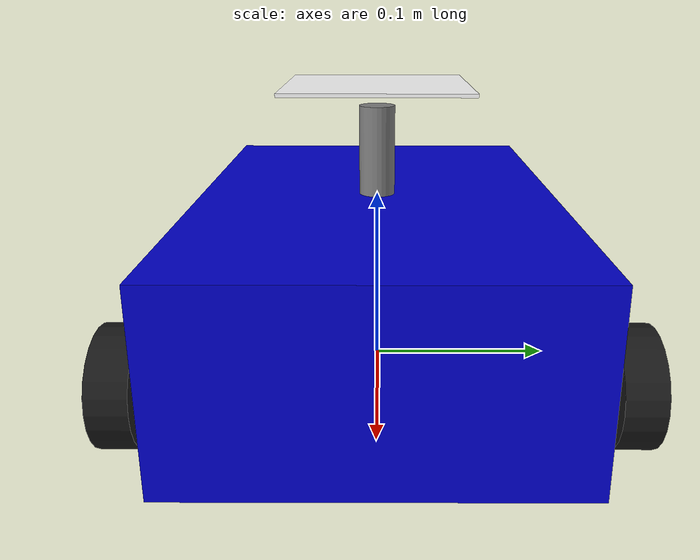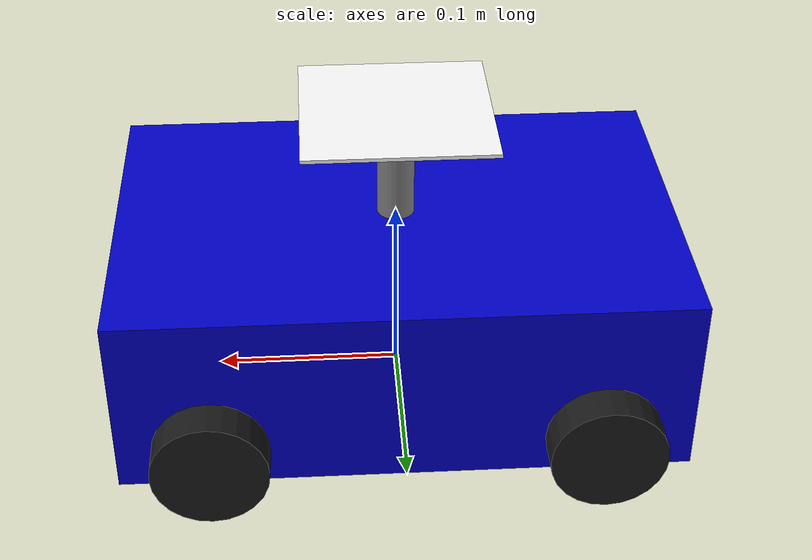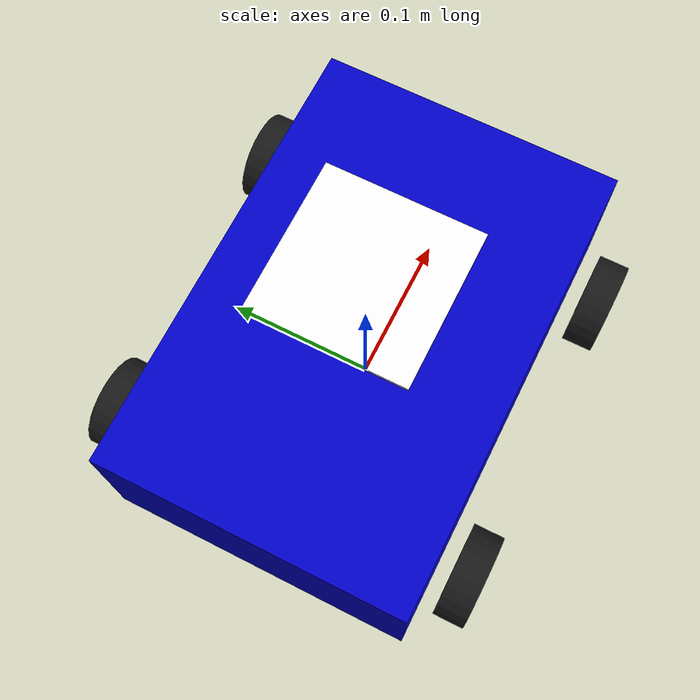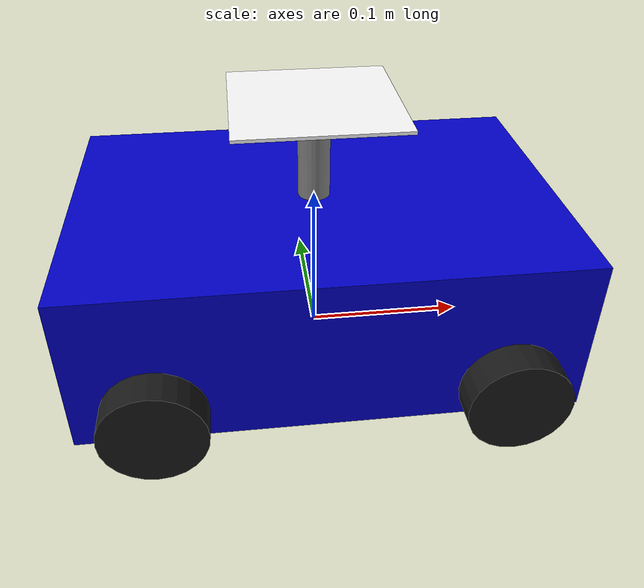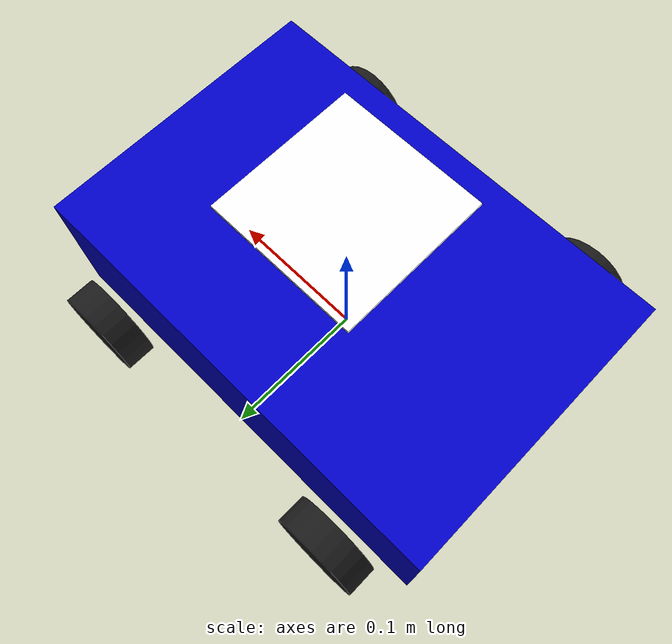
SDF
<?xml version="1.0"?>
<sdf version="1.8">
  <model name="marker_robot">
    <pose>0 0 0 0 0 0</pose>

    <!-- Base Link (robot body) -->
    <link name="base_link">
      <pose>0 0 0.05 0 0 0</pose>
      <inertial>
        <mass>2.0</mass>
        <inertia>
          <ixx>0.01</ixx>
          <ixy>0</ixy>
          <ixz>0</ixz>
          <iyy>0.02</iyy>
          <iyz>0</iyz>
          <izz>0.02</izz>
        </inertia>
      </inertial>
      <collision name="collision">
        <geometry>
          <box><size>0.30 0.20 0.10</size></box>
        </geometry>
      </collision>
      <visual name="visual">
        <geometry>
          <box><size>0.30 0.20 0.10</size></box>
        </geometry>
        <material>
          <ambient>0.0 0.0 0.8 1</ambient>
          <diffuse>0.0 0.0 0.8 1</diffuse>
        </material>
      </visual>
    </link>

    <!-- Left Front Wheel -->
    <link name="left_front_wheel">
      <pose>0.10 0.12 0.03 -1.5708 0 0</pose>
      <inertial>
        <mass>0.1</mass>
        <inertia>
          <ixx>0.00005</ixx>
          <ixy>0</ixy>
          <ixz>0</ixz>
          <iyy>0.00005</iyy>
          <iyz>0</iyz>
          <izz>0.00009</izz>
        </inertia>
      </inertial>
      <collision name="collision">
        <geometry>
          <cylinder>
            <radius>0.03</radius>
            <length>0.02</length>
          </cylinder>
        </geometry>
        <surface>
          <friction>
            <ode>
              <mu>1.0</mu>
              <mu2>1.0</mu2>
            </ode>
          </friction>
        </surface>
      </collision>
      <visual name="visual">
        <geometry>
          <cylinder>
            <radius>0.03</radius>
            <length>0.02</length>
          </cylinder>
        </geometry>
        <material>
          <ambient>0.1 0.1 0.1 1</ambient>
          <diffuse>0.1 0.1 0.1 1</diffuse>
        </material>
      </visual>
    </link>

    <!-- Right Front Wheel -->
    <link name="right_front_wheel">
      <pose>0.10 -0.12 0.03 -1.5708 0 0</pose>
      <inertial>
        <mass>0.1</mass>
        <inertia>
          <ixx>0.00005</ixx>
          <ixy>0</ixy>
          <ixz>0</ixz>
          <iyy>0.00005</iyy>
          <iyz>0</iyz>
          <izz>0.00009</izz>
        </inertia>
      </inertial>
      <collision name="collision">
        <geometry>
          <cylinder>
            <radius>0.03</radius>
            <length>0.02</length>
          </cylinder>
        </geometry>
        <surface>
          <friction>
            <ode>
              <mu>1.0</mu>
              <mu2>1.0</mu2>
            </ode>
          </friction>
        </surface>
      </collision>
      <visual name="visual">
        <geometry>
          <cylinder>
            <radius>0.03</radius>
            <length>0.02</length>
          </cylinder>
        </geometry>
        <material>
          <ambient>0.1 0.1 0.1 1</ambient>
          <diffuse>0.1 0.1 0.1 1</diffuse>
        </material>
      </visual>
    </link>

    <!-- Left Rear Wheel -->
    <link name="left_rear_wheel">
      <pose>-0.10 0.12 0.03 -1.5708 0 0</pose>
      <inertial>
        <mass>0.1</mass>
        <inertia>
          <ixx>0.00005</ixx>
          <ixy>0</ixy>
          <ixz>0</ixz>
          <iyy>0.00005</iyy>
          <iyz>0</iyz>
          <izz>0.00009</izz>
        </inertia>
      </inertial>
      <collision name="collision">
        <geometry>
          <cylinder>
            <radius>0.03</radius>
            <length>0.02</length>
          </cylinder>
        </geometry>
        <surface>
          <friction>
            <ode>
              <mu>1.0</mu>
              <mu2>1.0</mu2>
            </ode>
          </friction>
        </surface>
      </collision>
      <visual name="visual">
        <geometry>
          <cylinder>
            <radius>0.03</radius>
            <length>0.02</length>
          </cylinder>
        </geometry>
        <material>
          <ambient>0.1 0.1 0.1 1</ambient>
          <diffuse>0.1 0.1 0.1 1</diffuse>
        </material>
      </visual>
    </link>

    <!-- Right Rear Wheel -->
    <link name="right_rear_wheel">
      <pose>-0.10 -0.12 0.03 -1.5708 0 0</pose>
      <inertial>
        <mass>0.1</mass>
        <inertia>
          <ixx>0.00005</ixx>
          <ixy>0</ixy>
          <ixz>0</ixz>
          <iyy>0.00005</iyy>
          <iyz>0</iyz>
          <izz>0.00009</izz>
        </inertia>
      </inertial>
      <collision name="collision">
        <geometry>
          <cylinder>
            <radius>0.03</radius>
            <length>0.02</length>
          </cylinder>
        </geometry>
        <surface>
          <friction>
            <ode>
              <mu>1.0</mu>
              <mu2>1.0</mu2>
            </ode>
          </friction>
        </surface>
      </collision>
      <visual name="visual">
        <geometry>
          <cylinder>
            <radius>0.03</radius>
            <length>0.02</length>
          </cylinder>
        </geometry>
        <material>
          <ambient>0.1 0.1 0.1 1</ambient>
          <diffuse>0.1 0.1 0.1 1</diffuse>
        </material>
      </visual>
    </link>

    <!-- Marker Mount (pole on top) -->
    <link name="marker_mount">
      <pose>0 0 0.125 0 0 0</pose>
      <inertial>
        <mass>0.05</mass>
        <inertia>
          <ixx>0.00001</ixx>
          <ixy>0</ixy>
          <ixz>0</ixz>
          <iyy>0.00001</iyy>
          <iyz>0</iyz>
          <izz>0.000005</izz>
        </inertia>
      </inertial>
      <collision name="collision">
        <geometry>
          <cylinder>
            <radius>0.01</radius>
            <length>0.05</length>
          </cylinder>
        </geometry>
      </collision>
      <visual name="visual">
        <geometry>
          <cylinder>
            <radius>0.01</radius>
            <length>0.05</length>
          </cylinder>
        </geometry>
        <material>
          <ambient>0.5 0.5 0.5 1</ambient>
          <diffuse>0.5 0.5 0.5 1</diffuse>
        </material>
      </visual>
    </link>

    <!-- ArUco Marker (on top of mount, facing up) -->
    <link name="marker">
      <pose>0 0 0.161 0 0 0</pose>
      <inertial>
        <mass>0.01</mass>
        <inertia>
          <ixx>0.000001</ixx>
          <ixy>0</ixy>
          <ixz>0</ixz>
          <iyy>0.000001</iyy>
          <iyz>0</iyz>
          <izz>0.000002</izz>
        </inertia>
      </inertial>
      <collision name="collision">
        <geometry>
          <box><size>0.10 0.10 0.002</size></box>
        </geometry>
      </collision>
      <visual name="visual">
        <geometry>
          <box><size>0.10 0.10 0.002</size></box>
        </geometry>
        <material>
          <diffuse>1.0 1.0 1.0 1</diffuse>
          <specular>0.1 0.1 0.1 1</specular>
          <pbr>
            <metal>
              <albedo_map>aruco_marker_0.png</albedo_map>
            </metal>
          </pbr>
        </material>
      </visual>
    </link>

    <!-- Joints -->
    <joint name="left_front_wheel_joint" type="revolute">
      <parent>base_link</parent>
      <child>left_front_wheel</child>
      <axis>
        <xyz>0 0 1</xyz>
        <limit>
          <lower>-1e16</lower>
          <upper>1e16</upper>
        </limit>
      </axis>
    </joint>

    <joint name="right_front_wheel_joint" type="revolute">
      <parent>base_link</parent>
      <child>right_front_wheel</child>
      <axis>
        <xyz>0 0 1</xyz>
        <limit>
          <lower>-1e16</lower>
          <upper>1e16</upper>
        </limit>
      </axis>
    </joint>

    <joint name="left_rear_wheel_joint" type="revolute">
      <parent>base_link</parent>
      <child>left_rear_wheel</child>
      <axis>
        <xyz>0 0 1</xyz>
        <limit>
          <lower>-1e16</lower>
          <upper>1e16</upper>
        </limit>
      </axis>
    </joint>

    <joint name="right_rear_wheel_joint" type="revolute">
      <parent>base_link</parent>
      <child>right_rear_wheel</child>
      <axis>
        <xyz>0 0 1</xyz>
        <limit>
          <lower>-1e16</lower>
          <upper>1e16</upper>
        </limit>
      </axis>
    </joint>

    <joint name="marker_mount_joint" type="fixed">
      <parent>base_link</parent>
      <child>marker_mount</child>
    </joint>

    <joint name="marker_joint" type="fixed">
      <parent>marker_mount</parent>
      <child>marker</child>
    </joint>

    <!-- Differential Drive Plugin for Ignition Gazebo -->
    <plugin filename="ignition-gazebo-diff-drive-system" name="ignition::gazebo::systems::DiffDrive">
      <left_joint>left_front_wheel_joint</left_joint>
      <left_joint>left_rear_wheel_joint</left_joint>
      <right_joint>right_front_wheel_joint</right_joint>
      <right_joint>right_rear_wheel_joint</right_joint>
      <wheel_separation>0.24</wheel_separation>
      <wheel_radius>0.03</wheel_radius>
      <odom_publish_frequency>50</odom_publish_frequency>
      <topic>cmd_vel</topic>
      <odom_topic>odom</odom_topic>
      <tf_topic>tf</tf_topic>
      <frame_id>odom</frame_id>
      <child_frame_id>base_link</child_frame_id>
    </plugin>

    <!-- Joint State Publisher Plugin -->
    <plugin filename="ignition-gazebo-joint-state-publisher-system" name="ignition::gazebo::systems::JointStatePublisher">
      <topic>joint_states</topic>
    </plugin>

  </model>
</sdf>
